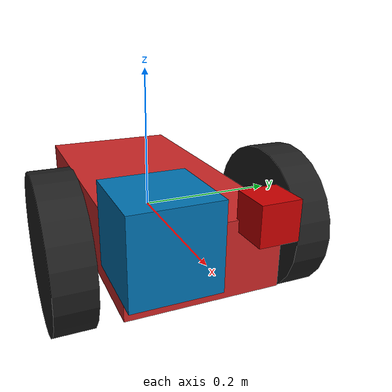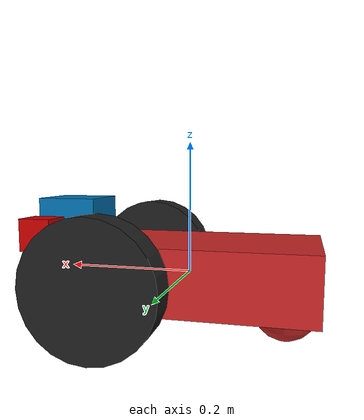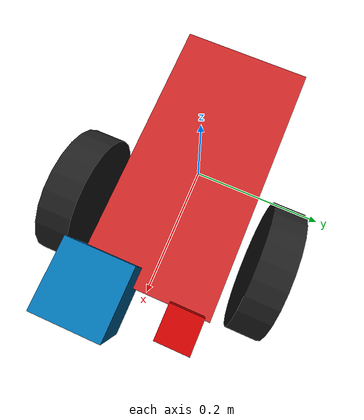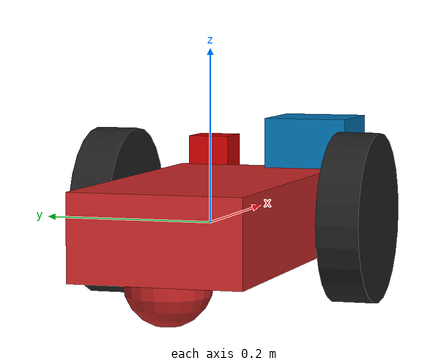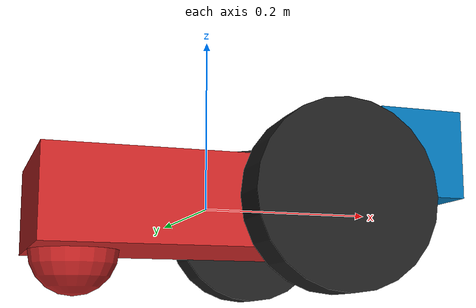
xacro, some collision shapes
<?xml version='1.0'?>

<robot name="myrobot" xmlns:xacro="http://www.ros.org/wiki/xacro">
  <xacro:include filename="$(find mybot_description)/urdf/mybot.gazebo" />
  <xacro:include filename="$(find mybot_description)/urdf/materials.xacro" />
  <xacro:include filename="$(find mybot_description)/urdf/macros.xacro" />
  <xacro:property name="camera_link" value="0.05" /> <!-- Size of square 'camera' box -->

  <link name='chassis'>
    <inertial>
      <mass value="10.0"/>
      <origin xyz="0.0 0 0.1" rpy=" 0 0 0"/>
      <inertia
          ixx="0.5" ixy="0" ixz="0"
          iyy="1.0" iyz="0"
          izz="0.1"
      />
    </inertial>

    <collision name='collision'>
      <geometry>
        <box size=".4 .2 .1"/>
      </geometry>
    </collision>

    <visual name='chassis_visual'>
      <origin xyz="0 0 0" rpy=" 0 0 0"/>
      <geometry>
        <box size=".4 .2 .1"/>
      </geometry>
    </visual>

    <collision name='caster_collision'>
      <origin xyz="-0.15 0 -0.05" rpy=" 0 0 0"/>
      <geometry>
        <sphere radius="0.05"/>
      </geometry>
      <surface>
        <friction>
          <ode>
            <mu>0</mu>
            <mu2>0</mu2>
            <slip1>1.0</slip1>
            <slip2>1.0</slip2>
          </ode>
        </friction>
      </surface>
    </collision>

    <visual name='caster_visual'>
      <origin xyz="-0.15 0 -0.05" rpy=" 0 0 0"/>
      <geometry>
        <sphere radius="0.05"/>
      </geometry>
    </visual>
  </link>

  <link name="left_wheel">
    <!--origin xyz="0.1 0.13 0.1" rpy="0 1.5707 1.5707"/-->
    <collision name="collision">
      <origin xyz="0 0 0" rpy="0 1.5707 1.5707"/>
      <geometry>
        <cylinder radius="0.1" length="0.05"/>
      </geometry>
    </collision>
    <visual name="left_wheel_visual">
      <origin xyz="0 0 0" rpy="0 1.5707 1.5707"/>
      <geometry>
        <cylinder radius="0.1" length="0.05"/>
      </geometry>
    </visual>
    <inertial>
      <origin xyz="0 0 0" rpy="0 1.5707 1.5707"/>
      <mass value="5"/>
      <cylinder_inertia m="5" r="0.1" h="0.05"/>
      <inertia
        ixx="1.0" ixy="0.0" ixz="0.0"
        iyy="1.0" iyz="0.0"
        izz="1.0"/>
    </inertial>
  </link>

  <link name="right_wheel">
    <!--origin xyz="0.1 -0.13 0.1" rpy="0 1.5707 1.5707"/-->
    <collision name="collision">
      <origin xyz="0 0 0" rpy="0 1.5707 1.5707"/>
      <geometry>
        <cylinder radius="0.1" length="0.05"/>
      </geometry>
    </collision>
    <visual name="right_wheel_visual">
      <origin xyz="0 0 0" rpy="0 1.5707 1.5707"/>
      <geometry>
        <cylinder radius="0.1" length="0.05"/>
      </geometry>
    </visual>
    <inertial>
      <origin xyz="0 0 0" rpy="0 1.5707 1.5707"/>
      <mass value="5"/>
      <cylinder_inertia m="5" r="0.1" h="0.05"/>
      <inertia
        ixx="1.0" ixy="0.0" ixz="0.0"
        iyy="1.0" iyz="0.0"
        izz="1.0"/>
    </inertial>
  </link>

  <joint type="continuous" name="left_wheel_hinge">
    <origin xyz="0.1 0.15 0" rpy="0 0 0"/>
    <child link="left_wheel"/>
    <parent link="chassis"/>
    <axis xyz="0 1 0" rpy="0 0 0"/>
    <limit effort="100" velocity="100"/>
    <joint_properties damping="0.0" friction="0.0"/>
  </joint>

  <joint type="continuous" name="right_wheel_hinge">
    <origin xyz="0.1 -0.15 0" rpy="0 0 0"/>
    <child link="right_wheel"/>
    <parent link="chassis"/>
    <axis xyz="0 1 0" rpy="0 0 0"/>
    <limit effort="100" velocity="100"/>
    <joint_properties damping="0.0" friction="0.0"/>
  </joint>

  <!-- Camera -->
	<joint name="camera_joint" type="fixed">
    <axis xyz="0 0 0" />
    <origin xyz="0.22 0.065 0.06" rpy="0 0 0"/>
    <parent link="chassis"/>
    <child link="camera_link"/>
    </joint>

  <link name="camera_link">
    <collision>
      <origin xyz="0 0 0" rpy="0 0 0"/>
      <geometry>
    <box size="${camera_link} ${camera_link} ${camera_link}"/>
      </geometry>
    </collision>

    <visual>
      <origin xyz="0 0 0" rpy="0 0 0"/>
      <geometry>
    <box size="${camera_link} ${camera_link} ${camera_link}"/>
      </geometry>
      <material name="red"/>
    </visual>

    <inertial>
      <mass value="1e-5" />
      <origin xyz="0 0 0" rpy="0 0 0"/>
      <inertia ixx="1e-6" ixy="0" ixz="0" iyy="1e-6" iyz="0" izz="1e-6" />
    </inertial>
  </link>

<!-- Hokuyo Laser -->
 <joint name="hokuyo_joint" type="fixed">
    <axis xyz="0 0 0" />
    <origin xyz="0.22 -0.065 0.06" rpy="0 0 0"/>
    <parent link="chassis"/>
    <child link="hokuyo_link"/>
  </joint>

  <link name="hokuyo_link">
    <collision>
      <origin xyz="0 0 0" rpy="0 0 0"/>
      <geometry>
    <box size="0.1 0.1 0.1"/>
      </geometry>
    </collision>

    <visual>
      <origin xyz="0 0 0" rpy="0 0 0"/>
      <geometry>  <!-- package://rrbot_description/meshes/hokuyo.dae -->
        <mesh filename="file:///home/tobi/.gazebo/models/hokuyo/meshes/hokuyo.dae"/>
      </geometry>
    </visual>

    <inertial>
      <mass value="1e-5" />
      <origin xyz="0 0 0" rpy="0 0 0"/>
      <inertia ixx="1e-6" ixy="0" ixz="0" iyy="1e-6" iyz="0" izz="1e-6" />
    </inertial>
  </link>

</robot>

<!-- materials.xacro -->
<robot>

  <material name="black">
    <color rgba="0.0 0.0 0.0 1.0"/>
  </material>

  <material name="blue">
    <color rgba="0.0 0.0 0.8 1.0"/>
  </material>

  <material name="green">
    <color rgba="0.0 0.8 0.0 1.0"/>
  </material>

  <material name="grey">
    <color rgba="0.2 0.2 0.2 1.0"/>
  </material>

  <material name="orange">
    <color rgba="${255/255} ${108/255} ${10/255} 1.0"/>
  </material>

  <material name="Cremisi">
    <color rgba="${255/255} ${0/255} ${0/255} 1.0"/>
  </material>

  <material name="brown">
    <color rgba="${222/255} ${207/255} ${195/255} 1.0"/>
  </material>

  <material name="red">
    <color rgba="0.8 0.0 0.0 1.0"/>
  </material>

  <material name="white">
    <color rgba="1.0 1.0 1.0 1.0"/>
  </material>

</robot>
